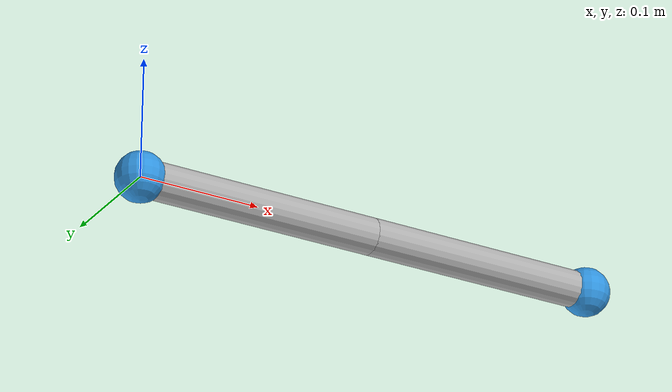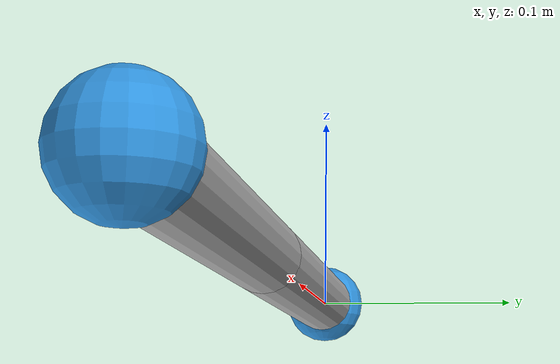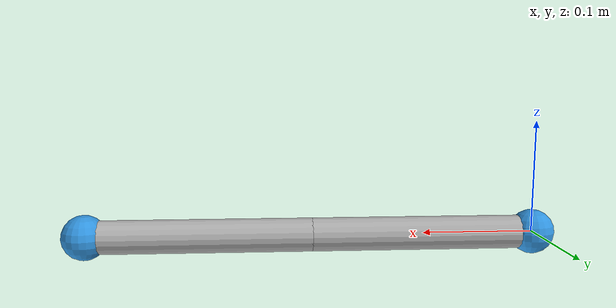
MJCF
<mujoco model="compliant_four_bar">

    <compiler angle="radian" />
    <option gravity="0 0 -9.81" />

    <default>
        <joint damping="0.1" />
        <geom size="0.02" rgba="0.7 0.7 0.7 1" />
    </default>

    <worldbody>

        <body name="groundA" pos="0 0 0">
            <geom type="sphere" size="0.02" rgba="0.2 0.6 0.9 1" />
        </body>

        <body name="barA" pos="0 0 0">
            <joint name="hingeA" type="hinge" axis="0 0 1" />
            <geom type="capsule" fromto="0 0 0  0.2 0 0" size="0.015" />

            <body name="barB" pos="0.2 0 0">
                <joint name="hingeB" type="hinge" axis="0 0 1" />
                <geom type="capsule" fromto="0 0 0  0.2 0 0" size="0.015" />

                <body name="compliant_link" pos="0.2 0 0">
                    <joint name="comp_slide" type="slide" axis="-1 0 0"
                        range="0 0.2"
                        solimplimit="0.9 0.95 0.001 0.5 2"
                        solreflimit="0.003 1" />
                    <geom type="capsule" fromto="0 0 0  -0.1 0 0" size="0.01" rgba="0.9 0.4 0.4 1" />

                    <body name="groundB" pos="0 0 0">
                        <geom type="sphere" size="0.02" rgba="0.2 0.6 0.9 1" />
                    </body>
                </body>
            </body>
        </body>

    </worldbody>

    <actuator>
        <position name="comp_spring"
            joint="comp_slide"
            kp="800" kv="20"
            ctrlrange="0 0.2" />
    </actuator>

</mujoco>
